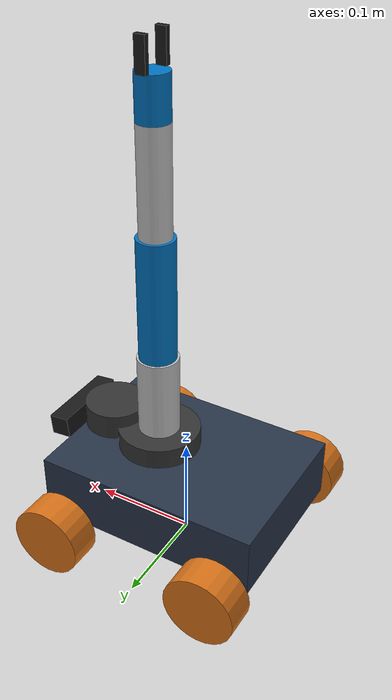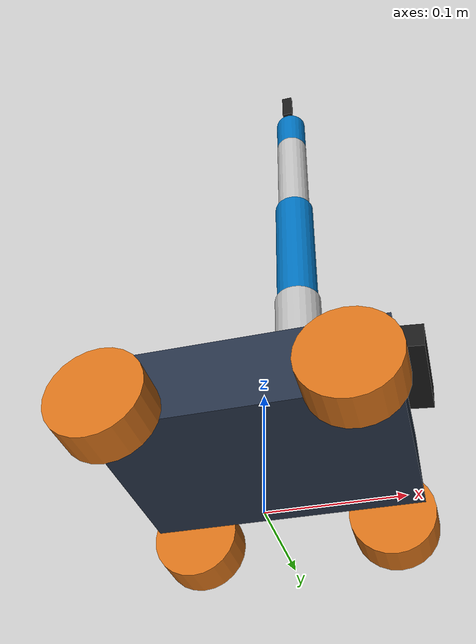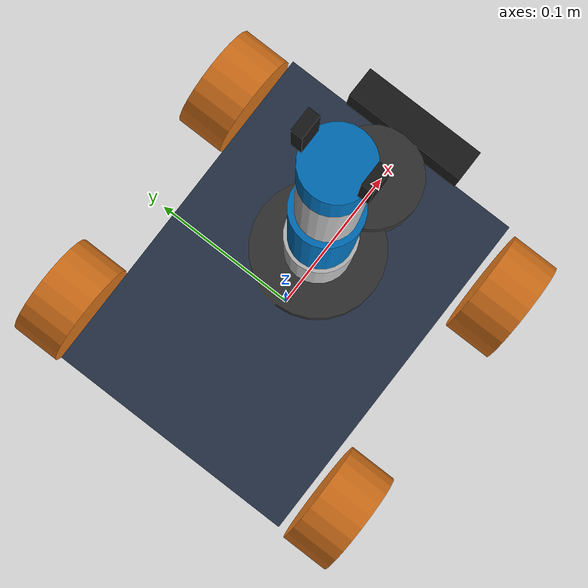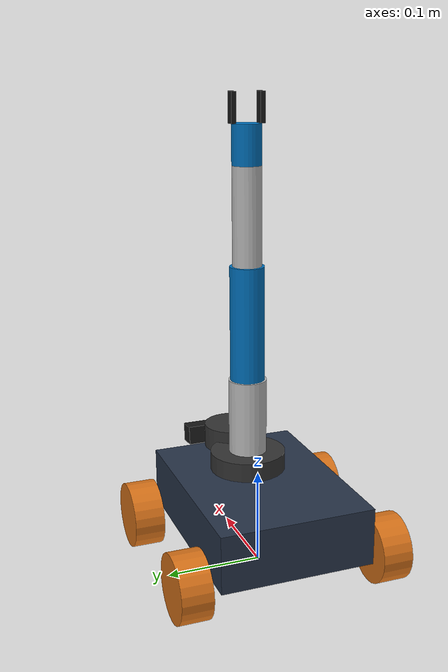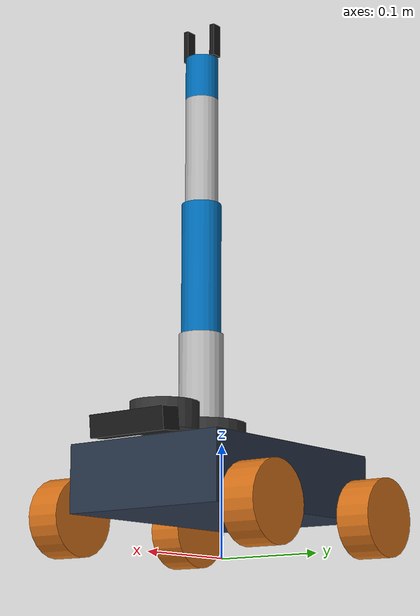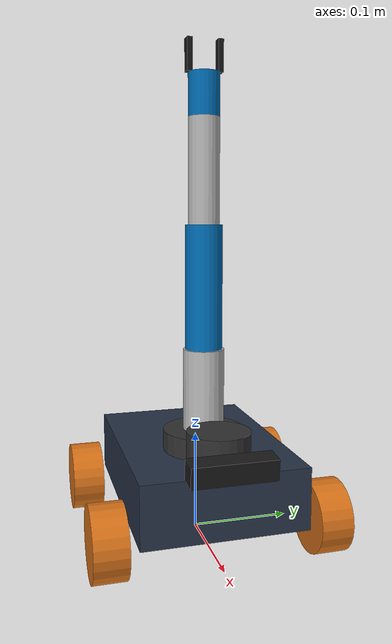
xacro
<?xml version="1.0"?>
<robot name="mobile_manipulator" xmlns:xacro="http://www.ros.org/wiki/xacro">

  <!-- 1. Base móvil Mecanum -->
  <xacro:include filename="mecanum_base.xacro"/>

  <!-- 2. Brazo Robótico -->
  <xacro:include filename="arm.xacro"/>

  <!-- 3. Sensores (LiDAR, IMU, Cámara RGB-D) -->
  <xacro:include filename="sensors.xacro"/>

  <!-- 4. Interfaces ros2_control y plugin Gazebo Harmonic -->
  <xacro:include filename="ros2_control.xacro"/>

</robot>

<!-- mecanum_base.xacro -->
<robot xmlns:xacro="http://www.ros.org/wiki/xacro">

  <!-- Propiedades geométricas de la base mecanum -->
  <xacro:property name="chassis_length" value="0.22"/>
  <xacro:property name="chassis_width" value="0.16"/>
  <xacro:property name="chassis_height" value="0.06"/>
  <xacro:property name="chassis_mass" value="2.5"/>

  <xacro:property name="wheel_radius" value="0.035"/>
  <xacro:property name="wheel_width" value="0.032"/>
  <xacro:property name="wheel_mass" value="0.15"/>

  <xacro:property name="wheel_x_offset" value="0.0825"/> <!-- Media distancia entre ejes: l/2 -->
  <xacro:property name="wheel_y_offset" value="0.105"/>  <!-- Media distancia entre ruedas: w/2 -->
  <xacro:property name="wheel_z_offset" value="0.0"/>

  <!-- Macro inercial para cajas -->
  <xacro:macro name="box_inertia" params="m w h d">
    <inertial>
      <origin xyz="0 0 0" rpy="0 0 0"/>
      <mass value="${m}"/>
      <inertia ixx="${(m/12) * (h*h + d*d)}" ixy="0.0" ixz="0.0"
               iyy="${(m/12) * (w*w + d*d)}" iyz="0.0"
               izz="${(m/12) * (w*w + h*h)}"/>
    </inertial>
  </xacro:macro>

  <!-- Macro inercial para cilindros -->
  <xacro:macro name="cylinder_inertia" params="m r h">
    <inertial>
      <origin xyz="0 0 0" rpy="0 0 0"/>
      <mass value="${m}"/>
      <inertia ixx="${(m/12) * (3*r*r + h*h)}" ixy="0" ixz="0"
               iyy="${(m/12) * (3*r*r + h*h)}" iyz="0"
               izz="${(m/2) * (r*r)}"/>
    </inertial>
  </xacro:macro>

  <!-- Base footprint y Base link -->
  <link name="base_footprint"/>

  <joint name="base_joint" type="fixed">
    <parent link="base_footprint"/>
    <child link="base_link"/>
    <origin xyz="0 0 ${wheel_radius}" rpy="0 0 0"/>
  </joint>

  <link name="base_link">
    <visual>
      <origin xyz="0 0 ${chassis_height/2}" rpy="0 0 0"/>
      <geometry>
        <box size="${chassis_length} ${chassis_width} ${chassis_height}"/>
      </geometry>
      <material name="chassis_color">
        <color rgba="0.15 0.20 0.28 1.0"/>
      </material>
    </visual>
    <collision>
      <origin xyz="0 0 ${chassis_height/2}" rpy="0 0 0"/>
      <geometry>
        <box size="${chassis_length} ${chassis_width} ${chassis_height}"/>
      </geometry>
    </collision>
    <xacro:box_inertia m="${chassis_mass}" w="${chassis_width}" h="${chassis_height}" d="${chassis_length}"/>
  </link>

  <!-- Macro para ruedas mecanum -->
  <xacro:macro name="mecanum_wheel" params="prefix x_reflect y_reflect">
    <link name="${prefix}_wheel_link">
      <visual>
        <origin xyz="0 0 0" rpy="${pi/2} 0 0"/>
        <geometry>
          <cylinder radius="${wheel_radius}" length="${wheel_width}"/>
        </geometry>
        <material name="wheel_color">
          <color rgba="0.85 0.45 0.10 1.0"/>
        </material>
      </visual>
      <collision>
        <origin xyz="0 0 0" rpy="${pi/2} 0 0"/>
        <geometry>
          <cylinder radius="${wheel_radius}" length="${wheel_width}"/>
        </geometry>
      </collision>
      <xacro:cylinder_inertia m="${wheel_mass}" r="${wheel_radius}" h="${wheel_width}"/>
    </link>

    <joint name="${prefix}_wheel_joint" type="continuous">
      <parent link="base_link"/>
      <child link="${prefix}_wheel_link"/>
      <origin xyz="${x_reflect * wheel_x_offset} ${y_reflect * wheel_y_offset} ${wheel_z_offset}" rpy="0 0 0"/>
      <axis xyz="0 1 0"/>
      <dynamics damping="0.05" friction="0.05"/>
    </joint>

    <gazebo reference="${prefix}_wheel_link">
      <mu1>1.0</mu1>
      <mu2>0.0</mu2>
      <kp>1000000.0</kp>
      <kd>100.0</kd>
      <material>Gazebo/Orange</material>
    </gazebo>
  </xacro:macro>

  <!-- Instanciación de las 4 ruedas -->
  <xacro:mecanum_wheel prefix="front_left"  x_reflect="1"  y_reflect="1" />
  <xacro:mecanum_wheel prefix="front_right" x_reflect="1"  y_reflect="-1"/>
  <xacro:mecanum_wheel prefix="rear_left"   x_reflect="-1" y_reflect="1" />
  <xacro:mecanum_wheel prefix="rear_right"  x_reflect="-1" y_reflect="-1"/>

</robot>

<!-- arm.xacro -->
<robot xmlns:xacro="http://www.ros.org/wiki/xacro">

  <!-- Parámetros del brazo sencillo -->
  <xacro:property name="arm_base_radius" value="0.04"/>
  <xacro:property name="arm_base_height" value="0.02"/>

  <xacro:property name="link1_radius" value="0.02"/>
  <xacro:property name="link1_length" value="0.08"/>

  <xacro:property name="link2_radius" value="0.018"/>
  <xacro:property name="link2_length" value="0.12"/>

  <xacro:property name="link3_radius" value="0.015"/>
  <xacro:property name="link3_length" value="0.10"/>

  <xacro:property name="wrist_radius" value="0.015"/>
  <xacro:property name="wrist_length" value="0.04"/>

  <!-- Base del brazo fijada al chasis -->
  <joint name="arm_base_joint" type="fixed">
    <parent link="base_link"/>
    <child link="arm_base_link"/>
    <origin xyz="0.03 0.0 ${chassis_height}" rpy="0 0 0"/>
  </joint>

  <link name="arm_base_link">
    <visual>
      <origin xyz="0 0 ${arm_base_height/2}" rpy="0 0 0"/>
      <geometry>
        <cylinder radius="${arm_base_radius}" length="${arm_base_height}"/>
      </geometry>
      <material name="arm_base_mat">
        <color rgba="0.2 0.2 0.2 1.0"/>
      </material>
    </visual>
    <collision>
      <origin xyz="0 0 ${arm_base_height/2}" rpy="0 0 0"/>
      <geometry>
        <cylinder radius="${arm_base_radius}" length="${arm_base_height}"/>
      </geometry>
    </collision>
    <xacro:cylinder_inertia m="0.3" r="${arm_base_radius}" h="${arm_base_height}"/>
  </link>

  <!-- Joint 1: Rotación de cintura (Yaw) -->
  <joint name="arm_joint_1" type="revolute">
    <parent link="arm_base_link"/>
    <child link="arm_link_1"/>
    <origin xyz="0 0 ${arm_base_height}" rpy="0 0 0"/>
    <axis xyz="0 0 1"/>
    <limit lower="${-pi}" upper="${pi}" effort="10.0" velocity="2.0"/>
    <dynamics damping="0.1" friction="0.1"/>
  </joint>

  <link name="arm_link_1">
    <visual>
      <origin xyz="0 0 ${link1_length/2}" rpy="0 0 0"/>
      <geometry>
        <cylinder radius="${link1_radius}" length="${link1_length}"/>
      </geometry>
      <material name="silver">
        <color rgba="0.75 0.75 0.75 1.0"/>
      </material>
    </visual>
    <collision>
      <origin xyz="0 0 ${link1_length/2}" rpy="0 0 0"/>
      <geometry>
        <cylinder radius="${link1_radius}" length="${link1_length}"/>
      </geometry>
    </collision>
    <xacro:cylinder_inertia m="0.2" r="${link1_radius}" h="${link1_length}"/>
  </link>

  <!-- Joint 2: Hombro (Pitch) -->
  <joint name="arm_joint_2" type="revolute">
    <parent link="arm_link_1"/>
    <child link="arm_link_2"/>
    <origin xyz="0 0 ${link1_length}" rpy="0 0 0"/>
    <axis xyz="0 1 0"/>
    <limit lower="${-pi/2}" upper="${pi/2}" effort="15.0" velocity="2.0"/>
    <dynamics damping="0.1" friction="0.1"/>
  </joint>

  <link name="arm_link_2">
    <visual>
      <origin xyz="0 0 ${link2_length/2}" rpy="0 0 0"/>
      <geometry>
        <cylinder radius="${link2_radius}" length="${link2_length}"/>
      </geometry>
      <material name="arm_accent">
        <color rgba="0.0 0.45 0.75 1.0"/>
      </material>
    </visual>
    <collision>
      <origin xyz="0 0 ${link2_length/2}" rpy="0 0 0"/>
      <geometry>
        <cylinder radius="${link2_radius}" length="${link2_length}"/>
      </geometry>
    </collision>
    <xacro:cylinder_inertia m="0.2" r="${link2_radius}" h="${link2_length}"/>
  </link>

  <!-- Joint 3: Codo (Pitch) -->
  <joint name="arm_joint_3" type="revolute">
    <parent link="arm_link_2"/>
    <child link="arm_link_3"/>
    <origin xyz="0 0 ${link2_length}" rpy="0 0 0"/>
    <axis xyz="0 1 0"/>
    <limit lower="${-pi*0.75}" upper="${pi*0.75}" effort="10.0" velocity="2.0"/>
    <dynamics damping="0.1" friction="0.1"/>
  </joint>

  <link name="arm_link_3">
    <visual>
      <origin xyz="0 0 ${link3_length/2}" rpy="0 0 0"/>
      <geometry>
        <cylinder radius="${link3_radius}" length="${link3_length}"/>
      </geometry>
      <material name="silver"/>
    </visual>
    <collision>
      <origin xyz="0 0 ${link3_length/2}" rpy="0 0 0"/>
      <geometry>
        <cylinder radius="${link3_radius}" length="${link3_length}"/>
      </geometry>
    </collision>
    <xacro:cylinder_inertia m="0.15" r="${link3_radius}" h="${link3_length}"/>
  </link>

  <!-- Joint 4: Muñeca (Pitch) -->
  <joint name="arm_joint_4" type="revolute">
    <parent link="arm_link_3"/>
    <child link="wrist_link"/>
    <origin xyz="0 0 ${link3_length}" rpy="0 0 0"/>
    <axis xyz="0 1 0"/>
    <limit lower="${-pi/2}" upper="${pi/2}" effort="5.0" velocity="2.5"/>
    <dynamics damping="0.05" friction="0.05"/>
  </joint>

  <link name="wrist_link">
    <visual>
      <origin xyz="0 0 ${wrist_length/2}" rpy="0 0 0"/>
      <geometry>
        <cylinder radius="${wrist_radius}" length="${wrist_length}"/>
      </geometry>
      <material name="arm_accent"/>
    </visual>
    <collision>
      <origin xyz="0 0 ${wrist_length/2}" rpy="0 0 0"/>
      <geometry>
        <cylinder radius="${wrist_radius}" length="${wrist_length}"/>
      </geometry>
    </collision>
    <xacro:cylinder_inertia m="0.08" r="${wrist_radius}" h="${wrist_length}"/>
  </link>

  <!-- Pinza / Gripper simple (1 DOF paralelo) -->
  <joint name="gripper_joint" type="prismatic">
    <parent link="wrist_link"/>
    <child link="gripper_left_finger"/>
    <origin xyz="0 0.015 ${wrist_length}" rpy="0 0 0"/>
    <axis xyz="0 1 0"/>
    <limit lower="0.0" upper="0.03" effort="10.0" velocity="0.5"/>
    <dynamics damping="0.05" friction="0.05"/>
  </joint>

  <link name="gripper_left_finger">
    <visual>
      <origin xyz="0 0 0.015" rpy="0 0 0"/>
      <geometry>
        <box size="0.01 0.005 0.03"/>
      </geometry>
      <material name="gripper_mat">
        <color rgba="0.1 0.1 0.1 1.0"/>
      </material>
    </visual>
    <collision>
      <origin xyz="0 0 0.015" rpy="0 0 0"/>
      <geometry>
        <box size="0.01 0.005 0.03"/>
      </geometry>
    </collision>
    <xacro:box_inertia m="0.02" w="0.005" h="0.03" d="0.01"/>
  </link>

  <!-- Dedo derecho fijo (la pinza actúa cerrando el dedo izquierdo contra este) -->
  <joint name="gripper_right_finger_joint" type="fixed">
    <parent link="wrist_link"/>
    <child link="gripper_right_finger"/>
    <origin xyz="0 -0.015 ${wrist_length}" rpy="0 0 0"/>
  </joint>

  <link name="gripper_right_finger">
    <visual>
      <origin xyz="0 0 0.015" rpy="0 0 0"/>
      <geometry>
        <box size="0.01 0.005 0.03"/>
      </geometry>
      <material name="gripper_mat"/>
    </visual>
    <collision>
      <origin xyz="0 0 0.015" rpy="0 0 0"/>
      <geometry>
        <box size="0.01 0.005 0.03"/>
      </geometry>
    </collision>
    <xacro:box_inertia m="0.02" w="0.005" h="0.03" d="0.01"/>
  </link>

  <!-- Frame de efector final (TCP) para agarre e inferencia -->
  <joint name="tool0_joint" type="fixed">
    <parent link="wrist_link"/>
    <child link="tool0"/>
    <origin xyz="0 0 ${wrist_length + 0.03}" rpy="0 0 0"/>
  </joint>
  <link name="tool0"/>

</robot>

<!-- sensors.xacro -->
<robot xmlns:xacro="http://www.ros.org/wiki/xacro">

  <!-- ==================== 1. SENSOR IMU ==================== -->
  <link name="imu_link">
    <visual>
      <origin xyz="0 0 0" rpy="0 0 0"/>
      <geometry>
        <box size="0.015 0.015 0.005"/>
      </geometry>
      <material name="imu_mat">
        <color rgba="0.1 0.8 0.2 1.0"/>
      </material>
    </visual>
    <xacro:box_inertia m="0.01" w="0.015" h="0.005" d="0.015"/>
  </link>

  <joint name="imu_joint" type="fixed">
    <parent link="base_link"/>
    <child link="imu_link"/>
    <origin xyz="0.0 0.0 ${chassis_height/2 + 0.01}" rpy="0 0 0"/>
  </joint>

  <gazebo reference="imu_link">
    <sensor name="imu_sensor" type="imu">
      <always_on>true</always_on>
      <update_rate>100</update_rate>
      <visualize>true</visualize>
      <topic>imu/data</topic>
      <gz_frame_id>imu_link</gz_frame_id>
    </sensor>
  </gazebo>

  <!-- ==================== 2. SENSOR LIDAR 2D ==================== -->
  <link name="laser_link">
    <visual>
      <origin xyz="0 0 0" rpy="0 0 0"/>
      <geometry>
        <cylinder radius="0.03" length="0.025"/>
      </geometry>
      <material name="lidar_mat">
        <color rgba="0.2 0.2 0.2 1.0"/>
      </material>
    </visual>
    <collision>
      <origin xyz="0 0 0" rpy="0 0 0"/>
      <geometry>
        <cylinder radius="0.03" length="0.025"/>
      </geometry>
    </collision>
    <xacro:cylinder_inertia m="0.12" r="0.03" h="0.025"/>
  </link>

  <joint name="laser_joint" type="fixed">
    <parent link="base_link"/>
    <child link="laser_link"/>
    <origin xyz="0.08 0.0 ${chassis_height + 0.02}" rpy="0 0 0"/>
  </joint>

  <gazebo reference="laser_link">
    <sensor name="lidar" type="gpu_lidar">
      <always_on>true</always_on>
      <update_rate>10</update_rate>
      <visualize>false</visualize>
      <topic>scan</topic>
      <gz_frame_id>laser_link</gz_frame_id>
      <ray>
        <scan>
          <horizontal>
            <samples>360</samples>
            <resolution>1</resolution>
            <min_angle>-3.14159</min_angle>
            <max_angle>3.14159</max_angle>
          </horizontal>
        </scan>
        <range>
          <min>0.12</min>
          <max>10.0</max>
          <resolution>0.01</resolution>
        </range>
        <noise>
          <type>gaussian</type>
          <mean>0.0</mean>
          <stddev>0.01</stddev>
        </noise>
      </ray>
    </sensor>
  </gazebo>

  <!-- ==================== 3. CÁMARA RGB-D ==================== -->
  <link name="camera_link">
    <visual>
      <origin xyz="0 0 0" rpy="0 0 0"/>
      <geometry>
        <box size="0.02 0.08 0.02"/>
      </geometry>
      <material name="camera_mat">
        <color rgba="0.1 0.1 0.1 1.0"/>
      </material>
    </visual>
    <collision>
      <origin xyz="0 0 0" rpy="0 0 0"/>
      <geometry>
        <box size="0.02 0.08 0.02"/>
      </geometry>
    </collision>
    <xacro:box_inertia m="0.08" w="0.08" h="0.02" d="0.02"/>
  </link>

  <joint name="camera_joint" type="fixed">
    <parent link="base_link"/>
    <child link="camera_link"/>
    <origin xyz="${chassis_length/2 + 0.01} 0.0 ${chassis_height + 0.01}" rpy="0 0.1 0"/>
  </joint>

  <!-- Frame óptico estándar para visión por computadora (X der, Y abajo, Z al frente) -->
  <link name="camera_optical_frame"/>
  <joint name="camera_optical_joint" type="fixed">
    <parent link="camera_link"/>
    <child link="camera_optical_frame"/>
    <origin xyz="0 0 0" rpy="${-pi/2} 0 ${-pi/2}"/>
  </joint>

  <gazebo reference="camera_link">
    <sensor name="rgbd_camera" type="rgbd_camera">
      <always_on>true</always_on>
      <update_rate>30</update_rate>
      <visualize>true</visualize>
      <topic>camera</topic>
      <gz_frame_id>camera_optical_frame</gz_frame_id>
      <camera>
        <horizontal_fov>1.089</horizontal_fov>
        <image>
          <width>640</width>
          <height>480</height>
          <format>R8G8B8</format>
        </image>
        <clip>
          <near>0.1</near>
          <far>8.0</far>
        </clip>
        <depth_camera>
          <clip>
            <near>0.1</near>
            <far>5.0</far>
          </clip>
        </depth_camera>
      </camera>
    </sensor>
  </gazebo>

</robot>
